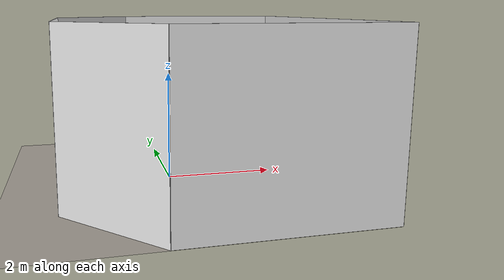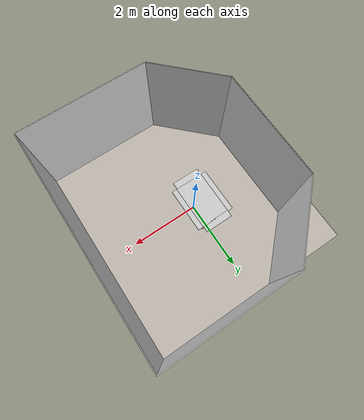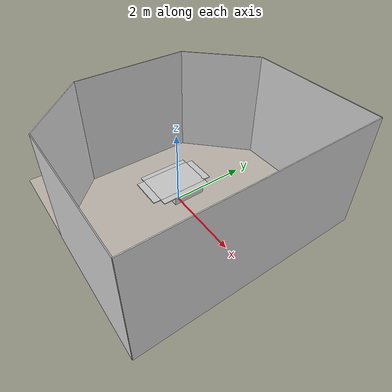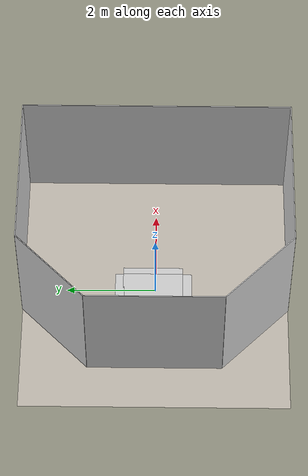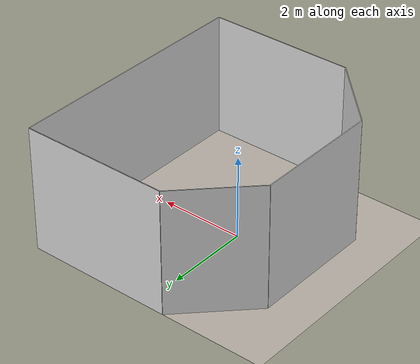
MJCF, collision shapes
<mujoco model="living_room_arena">
  <asset>
    <texture builtin="gradient" height="256" rgb1=".9 .9 1." rgb2=".2 .3 .4" type="skybox" width="256"/>
    <texture file="../textures/tile_grigia_caldera_porcelain_floor.png" type="2d" name="texplane"/>
    <material name="floorplane" reflectance="0.0" shininess="0.0"
	      specular="0.0" texrepeat="3 3" texture="texplane" texuniform="true"/>
    <!-- ceramic table texture and material-->
    <texture file="../textures/seamless_wood_planks_floor.png" type="cube" name="tex-table"/>
    <material name="table_texture" reflectance="0.0" shininess="0.0" specular="0.2" texrepeat="1 1" texture="tex-table" />
    <!-- steel legs -->
    <texture file="../textures/seamless_wood_planks_floor.png" type="cube" name="tex-table-legs"/>
    <material name="table_legs" reflectance="0.8" shininess="0.8" texrepeat="1 1" texture="tex-table-legs" />
    <!-- plaster walls -->
    <texture file="../textures/smooth_light_gray_plaster.png" type="2d" name="tex-wall"/>

    <material name="walls_mat" reflectance="0.0" shininess="0.2" specular="0.9" texrepeat="3 3" texture="tex-wall" texuniform="true" />
    <!-- added table texture and material for domain randomization -->
    <texture  name="textable" builtin="flat" height="512" width="512" rgb1="0.5 0.5 0.5" rgb2="0.5 0.5 0.5"/>
    <material name="table_mat" texture="textable" />

    <texture file="living_room_table/living_room_table_texture.png" name="tex-living_room_table" type="2d"/>
    <material name="living_room_table" reflectance="0.5" texrepeat="1 1" texture="tex-living_room_table" texuniform="false"/>
    <mesh file="living_room_table/visual/living_room_table_vis.msh" name="living_room_table_vis" scale="1.5 1.5 1.5"/>

    <texture file="wall_decoration/wall_decoration_texture.png" name="tex-wall_decoration" type="2d"/>
    <material name="wall_decoration" reflectance="0.5" texrepeat="1 1" texture="tex-wall_decoration" texuniform="false"/>
    <mesh file="wall_decoration/visual/wall_decoration_vis.msh" name="wall_decoration_vis" scale="0.4 0.1 0.4"/>

    <texture file="living_room/living_room_wall_unit.png" name="tex-living_room" type="2d"/>
    <material name="living_room" reflectance="0.5" texrepeat="1 1" texture="tex-living_room" texuniform="false"/>
    <mesh file="living_room/visual/living_room_vis.msh" name="living_room_vis" scale="0.7 0.7 0.7"/>

  </asset>
  <worldbody>
    <!-- Floor -->
    <body name="floor" pos="0 0 0">
      <geom condim="3" group="1" material="floorplane" name="floor" pos="0 0 0" size="3 3 .125" type="plane"/>
    </body>

    <body name="living_room_table" pos="0 0 0" quat="1 0.0 0.0 0.0">
    <body name="living_room_table_col" pos="-0.25 0.25 0" quat="0.707 0.0 0.0 0.707">
    <geom solimp="0.998 0.998 0.001" solref="0.001 1" density="100" friction="0.95 0.3 0.1" type="mesh" mesh="living_room_table_vis" conaffinity="0" contype="0" group="1" material="living_room_table"/>
    <geom solimp="0.998 0.998 0.001" solref="0.001 1" density="100" friction="0.95 0.3 0.1" type="box" pos="-0.19761 0.00000 0.42492" quat="0.70711 0.00000 0.70711 0.00000" size="0.01184 0.44432 0.67171" group="0" rgba="0.8 0.8 0.8 0.3"/>
    <geom solimp="0.998 0.998 0.001" solref="0.001 1" density="100" friction="0.95 0.3 0.1" type="box" pos="0.54936 -0.00000 0.42492" quat="0.50000 0.50000 0.50000 -0.50000" size="0.01184 0.10133 0.41675" group="0" rgba="0.8 0.8 0.8 0.3"/>
    <geom solimp="0.998 0.998 0.001" solref="0.001 1" density="100" friction="0.95 0.3 0.1" type="box" pos="-0.97006 0.00000 0.42492" quat="0.50000 -0.50000 -0.50000 -0.50000" size="0.01184 0.10133 0.41675" group="0" rgba="0.8 0.8 0.8 0.3"/>
    <geom solimp="0.998 0.998 0.001" solref="0.001 1" density="100" friction="0.95 0.3 0.1" type="box" pos="-0.19761 -0.51121 0.42492" quat="0.70711 0.00000 0.70711 0.00000" size="0.01184 0.07752 0.67171" group="0" rgba="0.8 0.8 0.8 0.3"/>
    <geom solimp="0.998 0.998 0.001" solref="0.001 1" density="100" friction="0.95 0.3 0.1" type="box" pos="-0.19761 0.49665 0.42492" quat="0.70711 0.00000 0.70711 0.00000" size="0.01184 0.07752 0.67171" group="0" rgba="0.8 0.8 0.8 0.3"/>
    <geom solimp="0.998 0.998 0.001" solref="0.001 1" density="100" friction="0.95 0.3 0.1" type="box" pos="-0.00000 0.00000 0.20414" quat="0.70711 -0.00000 -0.70711 -0.00000" size="0.20884 0.41162 0.43516" group="0" rgba="0.8 0.8 0.8 0.3"/>
    </body>
    </body>
    <geom pos="-1.95 0.60 1.5" quat="0.7071068 0 0 -0.7071068" type="mesh" mesh="wall_decoration_vis" conaffinity="0" contype="0" group="1" name="wall_decoration" material="wall_decoration"/>
    <geom pos="-1.7 0.0 0" quat="0 0 0 1" type="mesh" mesh="living_room_vis" conaffinity="0" contype="0" group="1" name="living_room" material="living_room"/>

    <geom pos="-1.25 2.25 1.5" quat="0.6532815 0.6532815 0.2705981 0.2705981" size="1.06 1.5 0.01" type="box" conaffinity="0" contype="0" group="1" name="wall_leftcorner_visual" material="walls_mat"/>
    <geom pos="-1.25 -2.25 1.5" quat="0.6532815 0.6532815 -0.2705981 -0.2705981" size="1.06 1.5 0.01" type="box" conaffinity="0" contype="0" group="1" name="wall_rightcorner_visual" material="walls_mat"/>
    <geom pos="1.25 3 1.5" quat="0.7071 0.7071 0 0" size="1.75 1.5 0.01" type="box" conaffinity="0" contype="0" group="1" name="wall_left_visual" material="walls_mat"/>
    <geom pos="1.25 -3 1.5" quat="0.7071 -0.7071 0 0" size="1.75 1.5 0.01" type="box" conaffinity="0" contype="0" group="1" name="wall_right_visual" material="walls_mat"/>
    <geom pos="-2 0 1.5" quat="0.5 0.5 0.5 0.5" size="1.5 1.5 0.01" type="box" conaffinity="0" contype="0" group="1" name="wall_rear_visual" material="walls_mat"/>
    <geom pos="3 0 1.5" quat="0.5 0.5 -0.5 -0.5" size="3 1.5 0.01" type="box" conaffinity="0" contype="0" group="1" name="wall_front_visual" material="walls_mat"/>
    <!-- Table body -->
    <light name="light1" diffuse=".8 .8 .8" dir="0 -.15 -1" directional="false" pos="1 1 4.0" specular="0.3 0.3 0.3" castshadow="false"/>
    <light name="light2" diffuse=".8 .8 .8" dir="0 -.15 -1" directional="false" pos="-3. -3. 4.0" specular="0.3 0.3 0.3" castshadow="false"/>

    <!-- front view -->
    <camera mode="fixed" name="frontview" pos="1.0 0 1.45" quat="0.56 0.43 0.43 0.56"/>
    <!-- bird view -->
    <camera mode="fixed" name="birdview" pos="-0.2 0 3.0" quat="0.7071 0 0 0.7071"/>
    <!-- agent view -->
    <camera mode="fixed" name="agentview" pos="0.5 0 1.35" quat="0.653 0.271 0.271 0.653"/>
    <camera mode="fixed" name="agentview_30" pos="1.299 0.75 0.9" quat="0.3966 0.3045 0.5274 0.6869"/>
    <camera mode="fixed" name="agentview_60" pos="0.75 1.299 0.9" quat="0.2053 0.1576 0.5883 0.7661"/>
    <camera mode="fixed" name="agentview_330" pos="1.299 -0.75 0.9" quat="0.6869 0.5274 0.3045 0.3966"/>
    <camera mode="fixed" name="agentview_300" pos="0.75 -1.299 0.9" quat="0.7661 0.5883 0.1576 0.2053"/>
    <camera mode="fixed" name="agentview_120" pos="-0.75 1.299 0.9" quat="-0.2053 -0.1576 0.5883 0.7661"/>
    <camera mode="fixed" name="agentview_240" pos="-0.75 -1.299 0.9" quat="0.7661 0.5883 -0.1576 -0.2053"/>
    <camera mode="fixed" name="agentview_180" pos="-1.5 0.0 0.9" quat="-0.5608 -0.4306 0.4306 0.5608"/>
    <camera mode="fixed" name="agentview_90" pos="-0.75 -1.299 0.9" quat="0.7661 0.5883 -0.1576 -0.2053"/>
    <camera mode="fixed" name="agentview_270" pos="-1.5 0.0 0.9" quat="-0.5608 -0.4306 0.4306 0.5608"/>
    <camera mode="fixed" name="agentview_15" pos="1.299 0.75 0.9" quat="0.3966 0.3045 0.5274 0.6869"/>
    <camera mode="fixed" name="agentview_45" pos="1.299 0.75 0.9" quat="0.3966 0.3045 0.5274 0.6869"/>
    <camera mode="fixed" name="agentview_75" pos="1.299 0.75 0.9" quat="0.3966 0.3045 0.5274 0.6869"/>
    <camera mode="fixed" name="agentview_105" pos="1.299 0.75 0.9" quat="0.3966 0.3045 0.5274 0.6869"/>
    <camera mode="fixed" name="agentview_135" pos="1.299 0.75 0.9" quat="0.3966 0.3045 0.5274 0.6869"/>
    <camera mode="fixed" name="agentview_285" pos="1.299 0.75 0.9" quat="0.3966 0.3045 0.5274 0.6869"/>
    <camera mode="fixed" name="agentview_255" pos="1.299 0.75 0.9" quat="0.3966 0.3045 0.5274 0.6869"/>
    <camera mode="fixed" name="agentview_225" pos="1.299 0.75 0.9" quat="0.3966 0.3045 0.5274 0.6869"/>
    <camera mode="fixed" name="agentview_315" pos="1.299 0.75 0.9" quat="0.3966 0.3045 0.5274 0.6869"/>
    <camera mode="fixed" name="agentview_345" pos="1.299 0.75 0.9" quat="0.3966 0.3045 0.5274 0.6869"/>

    <camera mode="fixed" name="agentview_up_15_30" pos="1.299 0.75 0.9" quat="0.3966 0.3045 0.5274 0.6869"/>
    <camera mode="fixed" name="agentview_up_15_60" pos="0.75 1.299 0.9" quat="0.2053 0.1576 0.5883 0.7661"/>
    <camera mode="fixed" name="agentview_up_15_330" pos="1.299 -0.75 0.9" quat="0.6869 0.5274 0.3045 0.3966"/>
    <camera mode="fixed" name="agentview_up_15_300" pos="0.75 -1.299 0.9" quat="0.7661 0.5883 0.1576 0.2053"/>
    <camera mode="fixed" name="agentview_up_15_120" pos="-0.75 1.299 0.9" quat="-0.2053 -0.1576 0.5883 0.7661"/>
    <camera mode="fixed" name="agentview_up_15_240" pos="-0.75 -1.299 0.9" quat="0.7661 0.5883 -0.1576 -0.2053"/>
    <camera mode="fixed" name="agentview_up_15_180" pos="-1.5 0.0 0.9" quat="-0.5608 -0.4306 0.4306 0.5608"/>
    <camera mode="fixed" name="agentview_up_30_30" pos="1.299 0.75 0.9" quat="0.3966 0.3045 0.5274 0.6869"/>
    <camera mode="fixed" name="agentview_up_30_60" pos="0.75 1.299 0.9" quat="0.2053 0.1576 0.5883 0.7661"/>
    <camera mode="fixed" name="agentview_up_30_330" pos="1.299 -0.75 0.9" quat="0.6869 0.5274 0.3045 0.3966"/>
    <camera mode="fixed" name="agentview_up_30_300" pos="0.75 -1.299 0.9" quat="0.7661 0.5883 0.1576 0.2053"/>
    <camera mode="fixed" name="agentview_up_30_120" pos="-0.75 1.299 0.9" quat="-0.2053 -0.1576 0.5883 0.7661"/>
    <camera mode="fixed" name="agentview_up_30_240" pos="-0.75 -1.299 0.9" quat="0.7661 0.5883 -0.1576 -0.2053"/>
    <camera mode="fixed" name="agentview_up_30_180" pos="-1.5 0.0 0.9" quat="-0.5608 -0.4306 0.4306 0.5608"/>
    <camera mode="fixed" name="agentview_up_345_30" pos="1.299 0.75 0.9" quat="0.3966 0.3045 0.5274 0.6869"/>
    <camera mode="fixed" name="agentview_up_345_60" pos="0.75 1.299 0.9" quat="0.2053 0.1576 0.5883 0.7661"/>
    <camera mode="fixed" name="agentview_up_345_330" pos="1.299 -0.75 0.9" quat="0.6869 0.5274 0.3045 0.3966"/>
    <camera mode="fixed" name="agentview_up_345_300" pos="0.75 -1.299 0.9" quat="0.7661 0.5883 0.1576 0.2053"/>
    <camera mode="fixed" name="agentview_up_345_120" pos="-0.75 1.299 0.9" quat="-0.2053 -0.1576 0.5883 0.7661"/>
    <camera mode="fixed" name="agentview_up_345_240" pos="-0.75 -1.299 0.9" quat="0.7661 0.5883 -0.1576 -0.2053"/>
    <camera mode="fixed" name="agentview_up_345_180" pos="-1.5 0.0 0.9" quat="-0.5608 -0.4306 0.4306 0.5608"/>
    <camera mode="fixed" name="agentview_up_15" pos="0.5 0 1.35" quat="0.653 0.271 0.271 0.653"/>
    <camera mode="fixed" name="agentview_up_30" pos="0.5 0 1.35" quat="0.653 0.271 0.271 0.653"/>
    <camera mode="fixed" name="agentview_up_345" pos="0.5 0 1.35" quat="0.653 0.271 0.271 0.653"/>

    <!-- side view -->
    <camera mode="fixed" name="sideview" pos="-0.05651774593317116 1.2761224129427358 1.4879572214102434" quat="0.009905065491771751 0.006877963156909582 0.5912228352893879 0.806418094001364" />
  </worldbody>
</mujoco>
